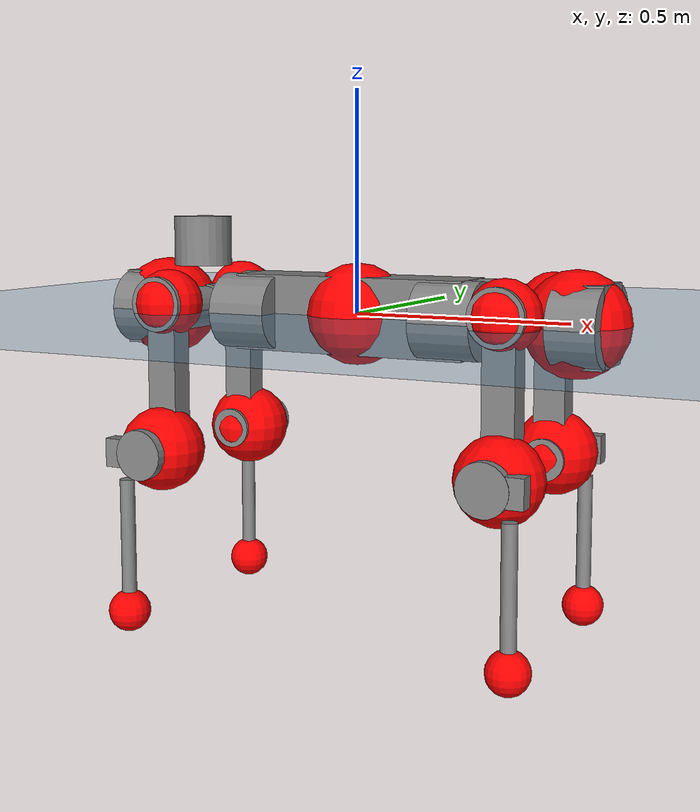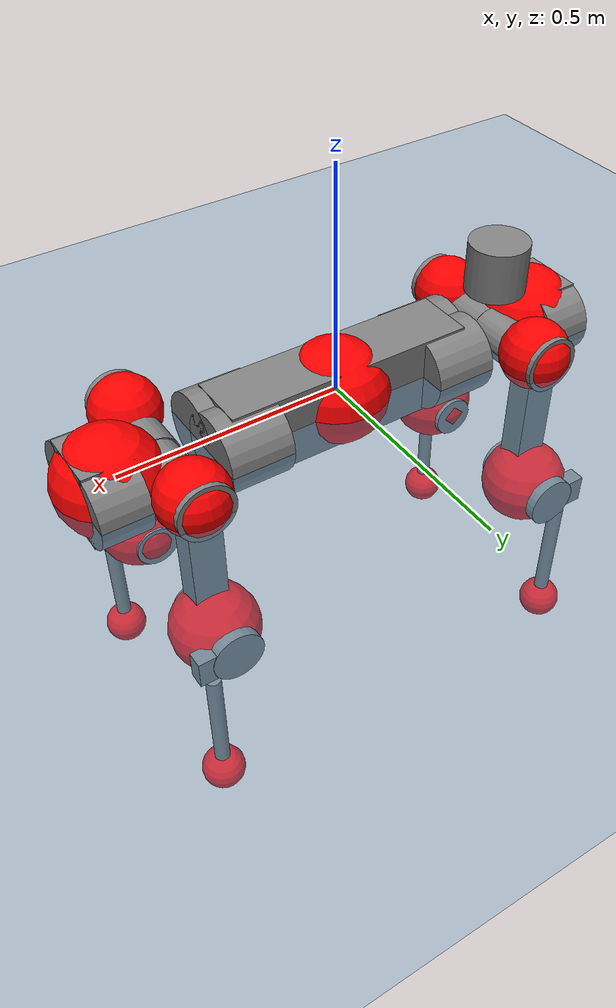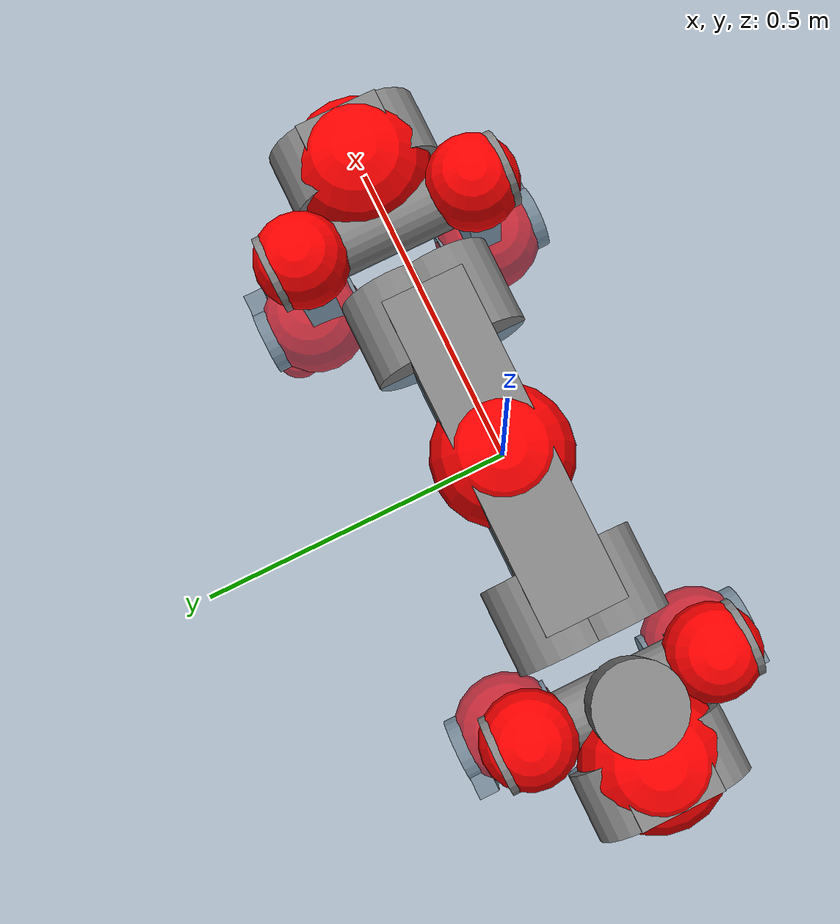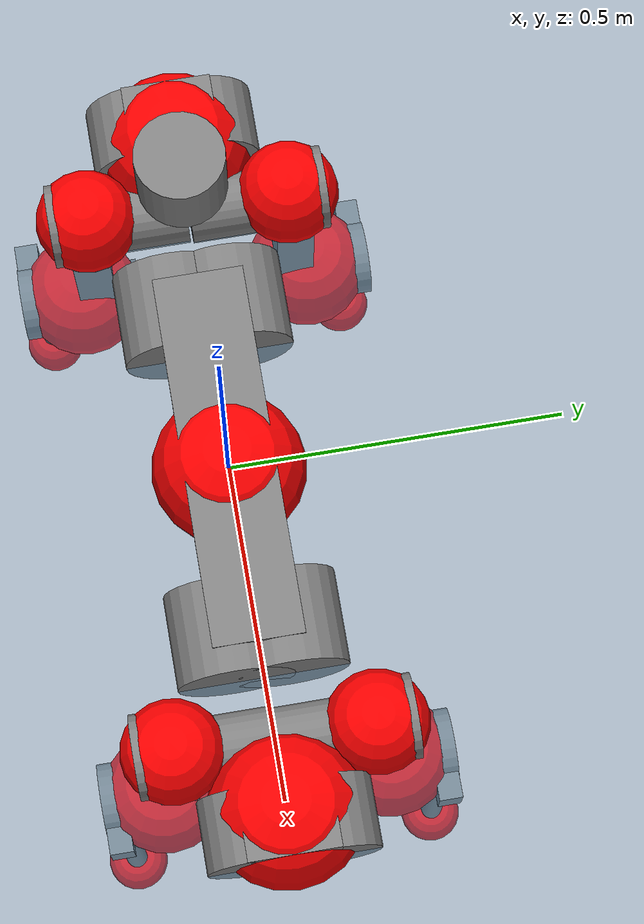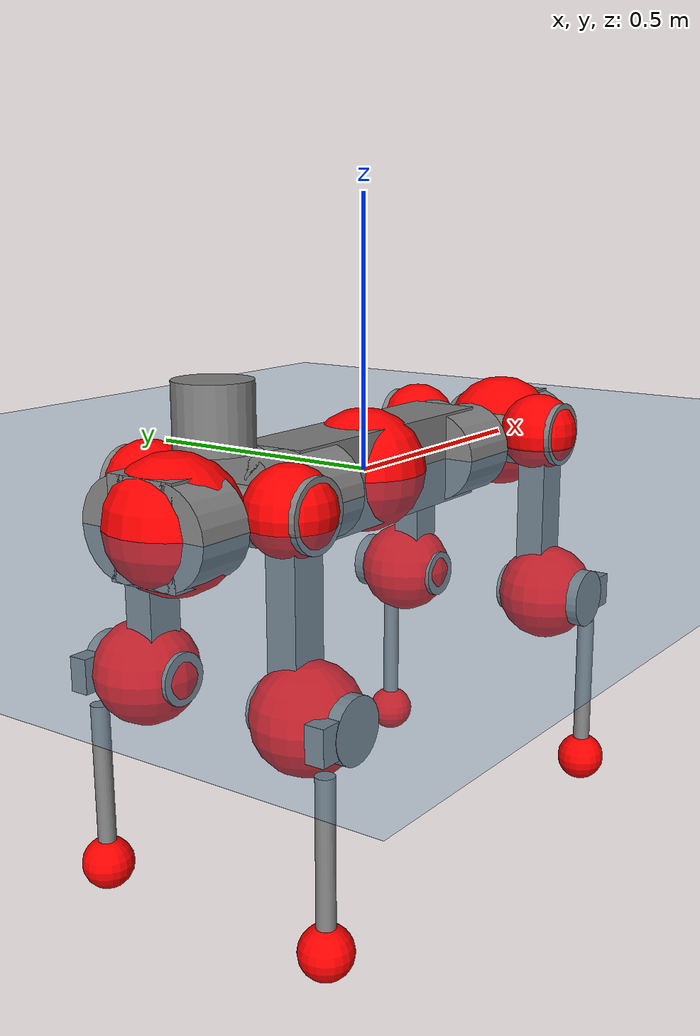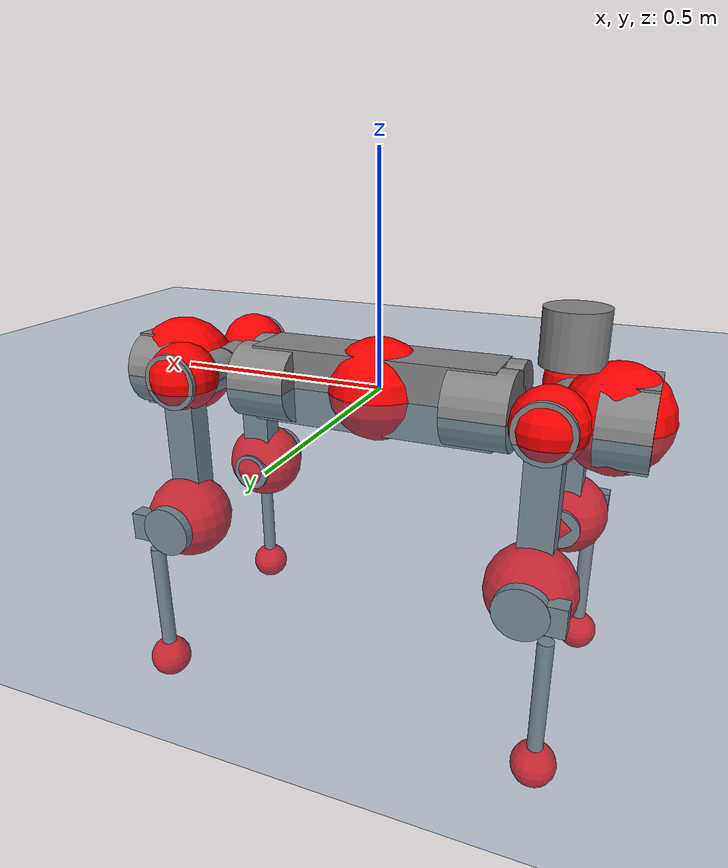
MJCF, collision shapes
<mujoco model="anymal_c">
  <compiler angle="radian" assetdir="assets" balanceinertia="true" inertiafromgeom="false"/>

  <option timestep="0.005" density="1.2" viscosity="2e-05"/>

  <size nkey="1"/>

  <visual>
    <quality shadowsize="8192"/>
    <map shadowclip="0.5"/>
  </visual>

  <default>
    <default class="/">
      <material specular="0" shininess="0.25"/>
      <geom contype="0" conaffinity="0" group="1" solref="-1000 -80"/>
      <site size="0.01 0.005 0.005" group="5"/>
      <general forcelimited="true" forcerange="-80 80" biastype="affine" gainprm="80" biasprm="0 -80 -2"/>
      <default class="anymal_c">
        <joint armature="0.01" damping="0.01" frictionloss="0.1"/>
        <default class="visual">
          <geom type="mesh" group="2"/>
          <default class="visual_zflip"/>
        </default>
        <default class="collision">
          <geom type="cylinder" group="3"/>
          <default class="foot">
            <geom size="0.03 0 0" type="sphere" condim="6" priority="1" friction="0.8 0.02 0.01" solimp="0.015 1 0.03"/>
          </default>
        </default>
      </default>
      <default class="reward_collision_sphere">
        <geom group="5" rgba="1 0 0 1"/>
      </default>
    </default>
  </default>

  <asset>
    <texture type="skybox" colorspace="auto" name="//unnamed_texture_0" builtin="gradient" rgb1="0.95 0.95 0.95" rgb2="0.95 0.95 0.95" width="100" height="600"/>
    <texture type="2d" colorspace="auto" name="texplane" builtin="checker" rgb1="0.345 0.575 0.748" rgb2="0.345 0.575 0.748" markrgb="1 1 1" width="512" height="512"/>
    <texture type="2d" colorspace="linear" name="base" file="base.png"/>
    <texture type="2d" colorspace="linear" name="top_shell" file="top_shell.png"/>
    <texture type="2d" colorspace="linear" name="bottom_shell" file="bottom_shell.png"/>
    <texture type="2d" colorspace="linear" name="remote" file="remote.png"/>
    <texture type="2d" colorspace="linear" name="hatch" file="hatch.png"/>
    <texture type="2d" colorspace="linear" name="handle" file="handle.png"/>
    <texture type="2d" colorspace="linear" name="face" file="face.png"/>
    <texture type="2d" colorspace="linear" name="battery" file="battery.png"/>
    <texture type="2d" colorspace="linear" name="lidar_cage" file="lidar_cage.png"/>
    <texture type="2d" colorspace="linear" name="depth_camera" file="depth_camera.png"/>
    <texture type="2d" colorspace="linear" name="wide_angle_camera" file="wide_angle_camera.png"/>
    <texture type="2d" colorspace="linear" name="lidar" file="lidar.png"/>
    <texture type="2d" colorspace="linear" name="drive" file="drive.png"/>
    <texture type="2d" colorspace="linear" name="hip_l" file="hip_l.png"/>
    <texture type="2d" colorspace="linear" name="shank_l" file="shank_l.png"/>
    <texture type="2d" colorspace="linear" name="foot" file="foot.png"/>
    <texture type="2d" colorspace="linear" name="thigh" file="thigh.png"/>
    <texture type="2d" colorspace="linear" name="shank_r" file="shank_r.png"/>
    <texture type="2d" colorspace="linear" name="hip_r" file="hip_r.png"/>
    <material name="MatPlane" class="/" texture="texplane" texuniform="true" texrepeat="2 2" specular="0.9" shininess="0.5"/>
    <material name="black_plastic" class="/" rgba="0.007 0.007 0.007 1"/>
    <material name="green" class="/" rgba="0.052 0.178 0.033 1"/>
    <material name="red" class="/" rgba="0.178 0.006 0.005 1"/>
    <material name="yellow" class="/" rgba="0.178 0.119 0.006 1"/>
    <material name="lwl" class="/" rgba="0.8 0.8 0.8 1"/>
    <material name="base" class="/" texture="base"/>
    <material name="top_shell" class="/" texture="top_shell"/>
    <material name="bottom_shell" class="/" texture="bottom_shell"/>
    <material name="hip_l" class="/" texture="hip_l"/>
    <material name="thigh" class="/" texture="thigh"/>
    <material name="shank_l" class="/" texture="shank_l"/>
    <material name="foot" class="/" texture="foot"/>
    <material name="hip_r" class="/" texture="hip_r"/>
    <material name="shank" class="/" texture="shank_r"/>
    <material name="hatch" class="/" texture="hatch"/>
    <material name="remote" class="/" texture="remote"/>
    <material name="handle" class="/" texture="handle"/>
    <material name="face" class="/" texture="face"/>
    <material name="depth_camera" class="/" texture="depth_camera"/>
    <material name="wide_angle_camera" class="/" texture="wide_angle_camera"/>
    <material name="battery" class="/" texture="battery"/>
    <material name="lidar_cage" class="/" texture="lidar_cage"/>
    <material name="lidar" class="/" texture="lidar"/>
    <material name="drive" class="/" texture="drive"/>
    <mesh name="base_0" class="/" file="base_0.obj"/>
    <mesh name="base_1" class="/" file="base_1.obj"/>
    <mesh name="base_2" class="/" file="base_2.obj"/>
    <mesh name="base_3" class="/" file="base_3.obj"/>
    <mesh name="base_4" class="/" file="base_4.obj"/>
    <mesh name="base_5" class="/" file="base_5.obj"/>
    <mesh name="top_shell" class="/" file="top_shell.obj"/>
    <mesh name="bottom_shell" class="/" file="bottom_shell.obj"/>
    <mesh name="remote" class="/" file="remote.obj"/>
    <mesh name="handle" class="/" file="handle.obj"/>
    <mesh name="face" class="/" file="face.obj"/>
    <mesh name="wide_angle_camera" class="/" file="wide_angle_camera.obj"/>
    <mesh name="depth_camera" class="/" file="depth_camera.obj"/>
    <mesh name="battery" class="/" file="battery.obj"/>
    <mesh name="lidar_cage" class="/" file="lidar_cage.obj"/>
    <mesh name="lidar" class="/" file="lidar.obj"/>
    <mesh name="drive" class="/" file="drive.obj"/>
    <mesh name="hip_l" class="/" file="hip_l.obj"/>
    <mesh name="thigh" class="/" file="thigh.obj"/>
    <mesh name="shank_l" class="/" file="shank_l.obj"/>
    <mesh name="foot" class="/" file="foot.obj"/>
    <mesh name="hip_r" class="/" file="hip_r.obj"/>
    <mesh name="hatch" class="/" file="hatch.obj"/>
    <mesh name="shank_r" class="/" file="shank_r.obj"/>
  </asset>

  <worldbody>
    <geom name="floor" class="/" size="100 100 0.125" type="plane" group="0" material="MatPlane"/>
    <light name="toplight_shadow" class="/" pos="0 0 5" dir="0.0990148 0.0990148 -0.990148" type="directional" ambient="0.04 0.04 0.04" diffuse="0.55 0.55 0.55" specular="0.12 0.12 0.12"/>
    <light name="toplight_fill" class="/" pos="0 0 5" dir="0.0990148 0.0990148 -0.990148" type="directional" castshadow="false" ambient="0.04 0.04 0.04" diffuse="0.3 0.3 0.3" specular="0.08 0.08 0.08"/>
    <body name="trunk" childclass="anymal_c" pos="0.000867779 8.38414e-06 -0.000621595" quat="1 -0.000369375 -0.000138908 0.000491805">
      <inertial pos="0.0029715 0.00143111 0.0606138" quat="0.49443 0.507476 0.504266 0.493683" mass="17.4746" diaginertia="1.22916 0.0364753 0.475616"/>
      <joint name="//unnamed_joint_0" type="free" armature="0" damping="0" frictionloss="0"/>
      <geom name="//unnamed_geom_1" class="visual" material="green" mesh="base_0"/>
      <geom name="//unnamed_geom_2" class="visual" material="yellow" mesh="base_1"/>
      <geom name="//unnamed_geom_3" class="visual" material="red" mesh="base_2"/>
      <geom name="//unnamed_geom_4" class="visual" material="black_plastic" mesh="base_3"/>
      <geom name="//unnamed_geom_5" class="visual" material="lwl" mesh="base_4"/>
      <geom name="//unnamed_geom_6" class="visual" material="base" mesh="base_5"/>
      <geom name="trunk_1" class="collision" size="0.279379 0.0674363 0.0867038" type="box"/>
      <geom name="trunk_2" class="collision" size="0.0867038 0.0698448" pos="0.247571 0.0398907 0" quat="0.707107 0 0.707107 0"/>
      <geom name="trunk_3" class="collision" size="0.0867038 0.0698448" pos="-0.247571 0.0398907 0" quat="0.707107 0 0.707107 0"/>
      <geom name="trunk_4" class="collision" size="0.0867038 0.0698448" pos="0.247571 -0.0398907 0" quat="0.707107 0 0.707107 0"/>
      <geom name="trunk_5" class="collision" size="0.0867038 0.0698448" pos="-0.247571 -0.0398907 0" quat="0.707107 0 0.707107 0"/>
      <geom name="//unnamed_geom_12" class="visual" material="top_shell" mesh="top_shell"/>
      <geom name="//unnamed_geom_13" class="visual" material="bottom_shell" mesh="bottom_shell"/>
      <geom name="//unnamed_geom_14" class="visual" material="remote" mesh="remote"/>
      <geom name="//unnamed_geom_15" class="visual" material="handle" mesh="handle"/>
      <geom name="//unnamed_geom_16" class="visual" pos="0.471808 0 0" quat="1 0 0 0" material="face" mesh="face"/>
      <geom name="trunk_6" class="collision" size="0.0529857 0.0674363 0.0867038" pos="0.534413 0 0" type="box"/>
      <geom name="//unnamed_geom_18" class="collision" size="0.0867038 0.0529857" pos="0.534413 0.0398907 0" quat="0.707107 0 0.707107 0"/>
      <geom name="//unnamed_geom_19" class="collision" size="0.0867038 0.0529857" pos="0.534413 -0.0398907 0" quat="0.707107 0 0.707107 0"/>
      <geom name="//unnamed_geom_20" class="visual" pos="0.525479 0 -0.0348469" quat="0.965926 0 0.258819 0" material="depth_camera" mesh="depth_camera"/>
      <geom name="//unnamed_geom_21" class="visual" pos="0.583927 0 0.0176946" material="wide_angle_camera" mesh="wide_angle_camera"/>
      <geom name="//unnamed_geom_22" class="visual_zflip" pos="-0.471808 0 0" quat="0 0 0 1" material="face" mesh="face"/>
      <geom name="trunk_7" class="collision" size="0.0529857 0.0674363 0.0867038" pos="-0.534413 0 0" quat="0 0 0 1" type="box"/>
      <geom name="//unnamed_geom_24" class="collision" size="0.0867038 0.0529857" pos="-0.534413 -0.0398907 0" quat="0 -0.707107 0 0.707107"/>
      <geom name="//unnamed_geom_25" class="collision" size="0.0867038 0.0529857" pos="-0.534413 0.0398907 0" quat="0 -0.707107 0 0.707107"/>
      <geom name="//unnamed_geom_26" class="visual" pos="-0.525479 0 -0.0348469" quat="0 -0.258819 0 0.965926" material="depth_camera" mesh="depth_camera"/>
      <geom name="//unnamed_geom_27" class="visual_zflip" pos="-0.583927 0 0.0176946" quat="0 0 0 1" material="wide_angle_camera" mesh="wide_angle_camera"/>
      <geom name="//unnamed_geom_28" class="visual" material="battery" mesh="battery"/>
      <geom name="//unnamed_geom_29" class="visual" pos="0 0.0361153 0.0340047" quat="0.683013 -0.183013 0.183013 0.683013" material="depth_camera" mesh="depth_camera"/>
      <geom name="//unnamed_geom_30" class="visual" pos="0 -0.0361153 0.0340047" quat="0.683013 0.183013 0.183013 -0.683013" material="depth_camera" mesh="depth_camera"/>
      <geom name="//unnamed_geom_31" class="visual" pos="-0.414326 0 0.0868772" quat="1 0 0 0" material="lidar_cage" mesh="lidar_cage"/>
      <geom name="trunk_8" class="collision" size="0.0674363 0.0578026" pos="-0.414326 0 0.157797"/>
      <geom name="//unnamed_geom_33" class="visual" pos="-0.414326 -0.000223306 0.168081" quat="0.707107 0 0 -0.707107" material="lidar" mesh="lidar"/>
      <geom name="//unnamed_geom_34" class="visual" pos="0.341364 0.0594836 -1.05594e-08" quat="0.258819 0.965926 0 0" material="drive" mesh="drive"/>
      <geom name="//unnamed_geom_35" class="visual" pos="0.341364 -0.0594836 1.05594e-08" quat="0.258819 -0.965926 0 0" material="drive" mesh="drive"/>
      <geom name="//unnamed_geom_36" class="visual" pos="-0.341364 0.0594836 1.05594e-08" quat="0 0 0.965926 -0.258819" material="drive" mesh="drive"/>
      <geom name="//unnamed_geom_37" class="visual" pos="-0.341364 -0.0594836 -1.05594e-08" quat="0 0 -0.965926 -0.258819" material="drive" mesh="drive"/>
      <geom name="//unnamed_geom_38" class="visual" pos="0.132038 0 0.0862862" quat="1 0 0 0" material="hatch" mesh="hatch"/>
      <geom name="//unnamed_geom_39" class="reward_collision_sphere" size="0.115605"/>
      <geom name="//unnamed_geom_40" class="reward_collision_sphere" size="0.115605" pos="0.512217 0 0"/>
      <geom name="//unnamed_geom_41" class="reward_collision_sphere" size="0.115605" pos="-0.512217 0 0"/>
      <site name="imu" pos="0.299501 -0.0036134 0.0476686" size="0.00963376"/>
      <camera name="track" pos="0 -1.13973 0" quat="0.707107 0.707107 0 0" mode="trackcom"/>
      <camera name="ego_camera" pos="0.512217 0 -0.0472801" quat="-0.5 -0.5 0.5 0.5"/>
      <body name="LF_HIP" pos="0.34384 0.0574097 0.000122745" quat="0.258083 0.966123 0.000402599 0.000558838">
        <inertial pos="0.0629075 -0.0105539 -0.01011" quat="-0.131257 0.713071 -0.138056 0.674717" mass="2.55036" diaginertia="0.0115259 0.000299605 0.00786158"/>
        <joint name="LF_HAA" pos="0 0 0" axis="0.999999 0.000803025 -0.00136936" range="-0.728904 0.52227" armature="0.00840289" damping="0.0221304" frictionloss="0.0858012"/>
        <geom name="//unnamed_geom_42" class="visual" pos="0 -0.000621162 0.000102025" quat="0.258819 -0.965926 0 0" material="hip_l" mesh="hip_l"/>
        <geom name="//unnamed_geom_43" class="visual" pos="0.0681817 -0.0753504 -0.0480313" quat="0.183013 -0.683013 0.683013 0.183013" material="drive" mesh="drive"/>
        <geom name="//unnamed_geom_44" class="collision" size="0.0481688 0.0674363" pos="0.0681817 -0.00681549 -0.00816173" quat="-0.353553 -0.612372 0.612372 -0.353553"/>
        <body name="LF_THIGH" pos="0.0682033 -0.0434784 -0.0501531" quat="0.182875 -0.683016 0.682968 0.183303">
          <inertial pos="0.0377167 0.000107801 -0.292237" quat="0.993015 0.00729568 -0.0786843 0.0876195" mass="2.79939" diaginertia="0.059355 0.00180636 0.00943255"/>
          <joint name="LF_HFE" pos="0 0 0" axis="0.999885 -0.0117379 0.00956588" stiffness="0.0130878" range="-3.19906 3.18395" armature="0.0104977" damping="0" frictionloss="0.103128"/>
          <geom name="//unnamed_geom_45" class="visual" pos="0.0113088 1.782e-05 0" quat="0.707107 0 0 -0.707107" material="thigh" mesh="thigh"/>
          <geom name="//unnamed_geom_46" class="collision" size="0.0626194 0.038535" pos="0.0455304 0 0" quat="0.5 0.5 -0.5 -0.5"/>
          <geom name="//unnamed_geom_47" class="collision" size="0.0361266 0.0289013 0.136139" pos="0.0341478 0 -0.167033" quat="0.707107 0 0 -0.707107" type="box"/>
          <geom name="//unnamed_geom_48" class="visual" pos="0.114167 0 -0.336871" quat="1 0 0 0" material="drive" mesh="drive"/>
          <geom name="//unnamed_geom_49" class="collision" size="0.0481688 0.0674363" pos="0.0344892 0 -0.336871" quat="0.707107 0 0.707107 0"/>
          <geom name="//unnamed_geom_50" class="reward_collision_sphere" size="0.0770701" pos="0.0284565 0 0"/>
          <body name="LF_SHANK" pos="0.113746 0.000635339 -0.333741" quat="1 -0.000110362 -0.000111651 0.000176043">
            <inertial pos="0.00386628 -0.0347934 -0.0978056" quat="0.992914 -0.112788 0.00278603 -0.0373249" mass="0.51582" diaginertia="0.0189573 0.000557372 0.00244963"/>
            <joint name="LF_KFE" pos="0 0 0" axis="0.999923 -0.00131092 0.0123442" range="-3.1581 3.18773" armature="0.0105959" damping="0.0114043" frictionloss="0.101882"/>
            <geom name="//unnamed_geom_51" class="visual" pos="0.00368754 0.0196622 0" quat="0.707107 0 0 -0.707107" material="shank_l" mesh="shank_l"/>
            <geom name="LF_kfe_act" class="collision" size="0.0578026 0.0192675" pos="0.0227652 0 0" quat="0.5 0.5 -0.5 -0.5"/>
            <geom name="//unnamed_geom_53" class="collision" size="0.0553932 0.0325139 0.0183041" pos="0.0227652 -0.0327668 0" quat="0.5 0.5 -0.5 -0.5" type="box"/>
            <geom name="//unnamed_geom_54" class="visual" pos="0.0148534 -0.0437835 -0.399481" quat="0.382683 0 0 -0.92388" material="foot" mesh="foot"/>
            <geom name="LF_calf" class="collision" size="0.0168591 0.136079" pos="0.0148543 -0.0501198 -0.199741" quat="0.707107 0 0 -0.707107"/>
            <geom name="LF_foot" class="foot" size="0.0246617" pos="0.0148543 -0.0501198 -0.372886" quat="0.707107 0 0 -0.707107"/>
            <geom name="//unnamed_geom_57" class="reward_collision_sphere" size="0.0963376" pos="-0.0569129 0 0"/>
            <geom name="//unnamed_geom_58" class="reward_collision_sphere" size="0.0481688" pos="0.0148543 -0.0501198 -0.372886"/>
            <site name="LF_foot" class="foot" pos="0.0148543 -0.0501198 -0.372886" quat="0.707107 0 0 -0.707107" size="0.00963376"/>
          </body>
        </body>
      </body>
      <body name="RF_HIP" pos="0.340635 -0.0585164 0.000508596" quat="0.258678 -0.965963 0.00023692 -0.00034151">
        <inertial pos="0.0633311 0.00820103 -0.00928022" quat="0.130961 0.679716 0.127624 0.710315" mass="2.44298" diaginertia="0.0110378 0.00030625 0.00774784"/>
        <joint name="RF_HAA" pos="0 0 0" axis="0.999898 -0.0128168 0.00624636" range="-0.454995 0.758485" armature="0.0102813" damping="0.015181" frictionloss="0.10364"/>
        <geom name="//unnamed_geom_59" class="visual" pos="0 0.000621157 0.000102025" quat="0.258819 0.965926 0 0" material="hip_r" mesh="hip_r"/>
        <geom name="//unnamed_geom_60" class="visual" pos="0.0681817 0.0753504 -0.0480313" quat="0.183013 0.683013 0.683013 -0.183013" material="drive" mesh="drive"/>
        <geom name="//unnamed_geom_61" class="collision" size="0.0481688 0.0674363" pos="0.0681817 0.00681549 -0.00816173" quat="-0.353553 0.612372 0.612372 0.353553"/>
        <body name="RF_THIGH" pos="0.0661341 0.0390869 -0.0517703" quat="0.182322 0.683546 0.68246 -0.183774">
          <inertial pos="0.0353426 0.00189771 -0.291352" quat="0.992151 -0.00275496 -0.0843188 0.0922977" mass="2.82755" diaginertia="0.0585321 0.00182304 0.00992529"/>
          <joint name="RF_HFE" pos="0 0 0" axis="0.999996 -0.00173853 0.00221093" stiffness="0.00640871" range="-3.20388 3.15858" armature="0.00933653" damping="0.00514495" frictionloss="0.0763073"/>
          <geom name="//unnamed_geom_62" class="visual" pos="0.0113088 1.782e-05 0" quat="0.707107 0 0 -0.707107" material="thigh" mesh="thigh"/>
          <geom name="//unnamed_geom_63" class="collision" size="0.0626194 0.038535" pos="0.0455304 0 0" quat="0.5 0.5 0.5 0.5"/>
          <geom name="//unnamed_geom_64" class="collision" size="0.0361266 0.0289013 0.136139" pos="0.0341478 0 -0.167033" quat="0.707107 0 0 0.707107" type="box"/>
          <geom name="//unnamed_geom_65" class="visual" pos="0.114167 0 -0.336871" quat="1 0 0 0" material="drive" mesh="drive"/>
          <geom name="//unnamed_geom_66" class="collision" size="0.0481688 0.0674363" pos="0.0344892 0 -0.336871" quat="0.707107 0 0.707107 0"/>
          <geom name="//unnamed_geom_67" class="reward_collision_sphere" size="0.0770701" pos="0.0284565 0 0"/>
          <body name="RF_SHANK" pos="0.112461 0.00228056 -0.333957" quat="1 0.000181161 1.39698e-05 6.94604e-05">
            <inertial pos="0.00742823 0.034861 -0.0973749" quat="0.99218 0.122254 0.00313501 0.0249457" mass="0.512002" diaginertia="0.0200729 0.000556053 0.00257709"/>
            <joint name="RF_KFE" pos="0 0 0" axis="0.999954 0.00639519 -0.0071318" range="-3.16721 3.16038" armature="0.0083605" damping="0.0149654" frictionloss="0.109442"/>
            <geom name="//unnamed_geom_68" class="visual" pos="0.00368752 -0.0196621 0" quat="0.707107 0 0 0.707107" material="shank" mesh="shank_r"/>
            <geom name="RF_kfe_act" class="collision" size="0.0578026 0.0192675" pos="0.0227652 0 0" quat="0.5 0.5 0.5 0.5"/>
            <geom name="//unnamed_geom_70" class="collision" size="0.0553932 0.0325139 0.0183041" pos="0.0227652 0.0327668 0" quat="0.5 0.5 0.5 0.5" type="box"/>
            <geom name="//unnamed_geom_71" class="visual" pos="0.0148552 0.0437835 -0.399481" quat="0.382683 0 0 0.92388" material="foot" mesh="foot"/>
            <geom name="RF_calf" class="collision" size="0.0168591 0.136079" pos="0.0148543 0.0501198 -0.199741" quat="0.707107 0 0 0.707107"/>
            <geom name="RF_foot" class="foot" size="0.0332315" pos="0.0148543 0.0501198 -0.372886" quat="0.707107 0 0 0.707107"/>
            <geom name="//unnamed_geom_74" class="reward_collision_sphere" size="0.0963376" pos="-0.0569129 0 0"/>
            <geom name="//unnamed_geom_75" class="reward_collision_sphere" size="0.0481688" pos="0.0148543 0.0501198 -0.372886"/>
            <site name="RF_foot" class="foot" pos="0.0148543 0.0501198 -0.372886" quat="0.707107 0 0 0.707107" size="0.00963376"/>
          </body>
        </body>
      </body>
      <body name="LH_HIP" pos="-0.338286 0.061947 0.00158464" quat="0.0013141 0.000573914 0.965994 -0.258559">
        <inertial pos="0.0668776 0.00679526 -0.00975788" quat="0.137315 0.680747 0.133227 0.707092" mass="2.52023" diaginertia="0.0109626 0.000288701 0.00781938"/>
        <joint name="LH_HAA" pos="0 0 0" axis="0.999895 0.014448 0.000946022" range="-0.443291 0.804246" armature="0.0104944" damping="0" frictionloss="0.09731"/>
        <geom name="//unnamed_geom_76" class="visual" pos="0 0.000621157 0.000102025" quat="-0.258819 -0.965926 0 0" material="hip_r" mesh="hip_r"/>
        <geom name="//unnamed_geom_77" class="visual" pos="0.0681817 0.0753504 -0.0480313" quat="0.183013 0.683013 0.683013 -0.183013" material="drive" mesh="drive"/>
        <geom name="//unnamed_geom_78" class="collision" size="0.0481688 0.0674363" pos="0.0681817 0.00681549 -0.00816173" quat="-0.353553 0.612372 0.612372 0.353553"/>
        <body name="LH_THIGH" pos="0.0668882 0.0452621 -0.0530508" quat="0.182698 0.683002 0.683132 -0.182921">
          <inertial pos="0.0351998 -0.000548488 -0.292059" quat="0.99285 -0.00282521 -0.0821483 0.086555" mass="2.72342" diaginertia="0.0572473 0.00175911 0.00993272"/>
          <joint name="LH_HFE" pos="0 0 0" axis="0.999994 0.00358241 7.18492e-05" stiffness="0.00120722" range="-3.15138 3.11451" armature="0.00868095" damping="0" frictionloss="0.10888"/>
          <geom name="//unnamed_geom_79" class="visual" pos="0.0113088 1.782e-05 0" quat="0.707107 0 0 -0.707107" material="thigh" mesh="thigh"/>
          <geom name="//unnamed_geom_80" class="collision" size="0.0626194 0.038535" pos="0.0455304 0 0" quat="0.5 0.5 -0.5 -0.5"/>
          <geom name="//unnamed_geom_81" class="collision" size="0.0361266 0.0289013 0.136139" pos="0.0341478 0 -0.167033" quat="0.707107 0 0 -0.707107" type="box"/>
          <geom name="//unnamed_geom_82" class="visual" pos="0.114167 0 -0.336871" quat="1 0 0 0" material="drive" mesh="drive"/>
          <geom name="//unnamed_geom_83" class="collision" size="0.0481688 0.0674363" pos="0.0344892 0 -0.336871" quat="0.707107 0 0.707107 0"/>
          <geom name="//unnamed_geom_84" class="reward_collision_sphere" size="0.0770701" pos="0.0284565 0 0"/>
          <body name="LH_SHANK" pos="0.113292 -0.0011465 -0.339394" quat="0.999999 0.000615547 0.000976274 0.000636451">
            <inertial pos="0.00632642 0.0344951 -0.0948241" quat="0.99076 0.129783 -0.0062418 0.0388944" mass="0.521831" diaginertia="0.0193211 0.00055969 0.00266439"/>
            <joint name="LH_KFE" pos="0 0 0" axis="0.999998 7.7227e-05 0.0017671" range="-3.11745 3.13847" armature="0.00967647" damping="0.0132616" frictionloss="0.10103"/>
            <geom name="//unnamed_geom_85" class="visual" pos="0.00368752 -0.0196621 0" quat="-0.707107 0 0 -0.707107" material="shank" mesh="shank_r"/>
            <geom name="LH_kfe_act" class="collision" size="0.0578026 0.0192675" pos="0.0227652 0 0" quat="0.5 0.5 -0.5 -0.5"/>
            <geom name="//unnamed_geom_87" class="collision" size="0.0553932 0.0325139 0.0183041" pos="0.0227652 0.0327668 0" quat="0.5 0.5 -0.5 -0.5" type="box"/>
            <geom name="//unnamed_geom_88" class="visual" pos="0.0148552 0.0437835 -0.399481" quat="-0.382683 0 0 -0.92388" material="foot" mesh="foot"/>
            <geom name="LH_calf" class="collision" size="0.0168591 0.136079" pos="0.0148543 0.0501198 -0.199741" quat="0.707107 0 0 -0.707107"/>
            <geom name="LH_foot" class="foot" size="0.02329" pos="0.0148543 0.0501198 -0.372886" quat="0.707107 0 0 -0.707107"/>
            <geom name="//unnamed_geom_91" class="reward_collision_sphere" size="0.0963376" pos="-0.0569129 0 0"/>
            <geom name="//unnamed_geom_92" class="reward_collision_sphere" size="0.0481688" pos="0.0148543 0.0501198 -0.372886"/>
            <site name="LH_foot" class="foot" pos="0.0148543 0.0501198 -0.372886" quat="0.707107 0 0 -0.707107" size="0.00963376"/>
          </body>
        </body>
      </body>
      <body name="RH_HIP" pos="-0.341764 -0.0576183 -0.0022855" quat="4.43777e-05 -7.78481e-05 -0.965931 -0.258801">
        <inertial pos="0.0665486 -0.00803389 -0.0110063" quat="-0.131547 0.70083 -0.134263 0.688118" mass="2.42726" diaginertia="0.0107969 0.000287269 0.00765698"/>
        <joint name="RH_HAA" pos="0 0 0" axis="0.999999 0.000146779 -0.00160437" range="-0.704548 0.43036" armature="0.0100705" damping="0.00614941" frictionloss="0.093642"/>
        <geom name="//unnamed_geom_93" class="visual" pos="0 -0.000621162 0.000102025" quat="-0.258819 0.965926 0 0" material="hip_l" mesh="hip_l"/>
        <geom name="//unnamed_geom_94" class="visual" pos="0.0681817 -0.0753504 -0.0480313" quat="-0.183013 0.683013 -0.683013 -0.183013" material="drive" mesh="drive"/>
        <geom name="//unnamed_geom_95" class="collision" size="0.0481688 0.0674363" pos="0.0681817 -0.00681549 -0.00816173" quat="0.353553 0.612372 -0.612372 0.353553"/>
        <body name="RH_THIGH" pos="0.0688655 -0.0437639 -0.0517542" quat="-0.182868 0.683029 -0.682964 -0.183277">
          <inertial pos="0.0357336 -0.00268861 -0.288331" quat="0.993227 -0.00472392 -0.0805204 0.0836371" mass="2.97775" diaginertia="0.0612849 0.00187278 0.0104123"/>
          <joint name="RH_HFE" pos="0 0 0" axis="0.999992 -0.0038578 0.00120742" range="-3.13458 3.12949" armature="0.00845237" damping="0" frictionloss="0.0930337"/>
          <geom name="//unnamed_geom_96" class="visual" pos="0.0113088 1.782e-05 0" quat="0.707107 0 0 -0.707107" material="thigh" mesh="thigh"/>
          <geom name="//unnamed_geom_97" class="collision" size="0.0626194 0.038535" pos="0.0455304 0 0" quat="0.5 0.5 0.5 0.5"/>
          <geom name="//unnamed_geom_98" class="collision" size="0.0361266 0.0289013 0.136139" pos="0.0341478 0 -0.167033" quat="0.707107 0 0 0.707107" type="box"/>
          <geom name="//unnamed_geom_99" class="visual" pos="0.114167 0 -0.336871" quat="1 0 0 0" material="drive" mesh="drive"/>
          <geom name="//unnamed_geom_100" class="collision" size="0.0481688 0.0674363" pos="0.0344892 0 -0.336871" quat="0.707107 0 0.707107 0"/>
          <geom name="//unnamed_geom_101" class="reward_collision_sphere" size="0.0770701" pos="0.0284565 0 0"/>
          <body name="RH_SHANK" pos="0.11602 -0.00246508 -0.33471" quat="1 -0.000421954 0.000757444 -0.000462962">
            <inertial pos="0.00390277 -0.034981 -0.0950902" quat="0.993309 -0.113163 -0.00309377 -0.0228275" mass="0.539281" diaginertia="0.0191704 0.000554888 0.00259475"/>
            <joint name="RH_KFE" pos="0 0 0" axis="0.999931 -0.00709943 0.00937005" range="-3.15792 3.08326" armature="0.0109392" damping="0.0199226" frictionloss="0.0956676"/>
            <geom name="//unnamed_geom_102" class="visual" pos="0.00368754 0.0196622 0" quat="0.707107 0 0 -0.707107" material="shank_l" mesh="shank_l"/>
            <geom name="RH_kfe_act" class="collision" size="0.0578026 0.0192675" pos="0.0227652 0 0" quat="0.5 0.5 0.5 0.5"/>
            <geom name="//unnamed_geom_104" class="collision" size="0.0553932 0.0325139 0.0183041" pos="0.0227652 -0.0327668 0" quat="0.5 0.5 0.5 0.5" type="box"/>
            <geom name="//unnamed_geom_105" class="visual" pos="0.0148534 -0.0437835 -0.399481" quat="0.382683 0 0 -0.92388" material="foot" mesh="foot"/>
            <geom name="RH_calf" class="collision" size="0.0168591 0.136079" pos="0.0148543 -0.0501198 -0.199741" quat="0.707107 0 0 0.707107"/>
            <geom name="RH_foot" class="foot" size="0.0276325" pos="0.0148543 -0.0501198 -0.372886" quat="0.707107 0 0 0.707107"/>
            <geom name="//unnamed_geom_108" class="reward_collision_sphere" size="0.0963376" pos="-0.0569129 0 0"/>
            <geom name="//unnamed_geom_109" class="reward_collision_sphere" size="0.0481688" pos="0.0148543 -0.0501198 -0.372886"/>
            <site name="RH_foot" class="foot" pos="0.0148543 -0.0501198 -0.372886" quat="0.707107 0 0 0.707107" size="0.00963376"/>
          </body>
        </body>
      </body>
    </body>
  </worldbody>

  <contact>
    <pair class="/" geom1="floor" geom2="LF_foot" name="//unnamed_contact_0"/>
    <pair class="/" geom1="floor" geom2="RF_foot" name="//unnamed_contact_1"/>
    <pair class="/" geom1="floor" geom2="LH_foot" name="//unnamed_contact_2"/>
    <pair class="/" geom1="floor" geom2="RH_foot" name="//unnamed_contact_3"/>
  </contact>

  <actuator>
    <general name="LF_HAA" class="/" joint="LF_HAA" forcerange="-72.9993 72.9993" gainprm="62.2029" biasprm="0 -62.2029 -1.83208"/>
    <general name="LF_HFE" class="/" joint="LF_HFE" forcerange="-72.3371 72.3371" gainprm="62.2029" biasprm="0 -62.2029 -1.83208"/>
    <general name="LF_KFE" class="/" joint="LF_KFE" forcerange="-72.4283 72.4283" gainprm="62.2029" biasprm="0 -62.2029 -1.83208"/>
    <general name="RF_HAA" class="/" joint="RF_HAA" forcerange="-73.9984 73.9984" gainprm="62.2029" biasprm="0 -62.2029 -1.83208"/>
    <general name="RF_HFE" class="/" joint="RF_HFE" forcerange="-85.0296 85.0296" gainprm="62.2029" biasprm="0 -62.2029 -1.83208"/>
    <general name="RF_KFE" class="/" joint="RF_KFE" forcerange="-80.6533 80.6533" gainprm="62.2029" biasprm="0 -62.2029 -1.83208"/>
    <general name="LH_HAA" class="/" joint="LH_HAA" forcerange="-78.2777 78.2777" gainprm="62.2029" biasprm="0 -62.2029 -1.83208"/>
    <general name="LH_HFE" class="/" joint="LH_HFE" forcerange="-81.1496 81.1496" gainprm="62.2029" biasprm="0 -62.2029 -1.83208"/>
    <general name="LH_KFE" class="/" joint="LH_KFE" forcerange="-73.9857 73.9857" gainprm="62.2029" biasprm="0 -62.2029 -1.83208"/>
    <general name="RH_HAA" class="/" joint="RH_HAA" forcerange="-70.1638 70.1638" gainprm="62.2029" biasprm="0 -62.2029 -1.83208"/>
    <general name="RH_HFE" class="/" joint="RH_HFE" forcerange="-84.9942 84.9942" gainprm="62.2029" biasprm="0 -62.2029 -1.83208"/>
    <general name="RH_KFE" class="/" joint="RH_KFE" forcerange="-75.196 75.196" gainprm="62.2029" biasprm="0 -62.2029 -1.83208"/>
  </actuator>

  <sensor>
    <gyro site="imu" name="imu_angular_velocity"/>
    <velocimeter site="imu" name="imu_linear_velocity"/>
    <framelinvel objtype="site" objname="LF_foot" name="LF_foot_global_linear_velocity"/>
    <framelinvel objtype="site" objname="RF_foot" name="RF_foot_global_linear_velocity"/>
    <framelinvel objtype="site" objname="LH_foot" name="LH_foot_global_linear_velocity"/>
    <framelinvel objtype="site" objname="RH_foot" name="RH_foot_global_linear_velocity"/>
  </sensor>

  <keyframe>
    <key name="home" qpos="0 0 0.55 1 0 0 0 0 0.4 -0.8 0 -0.4 0.8 0 -0.4 0.8 0 0.4 -0.8"/>
  </keyframe>
</mujoco>
